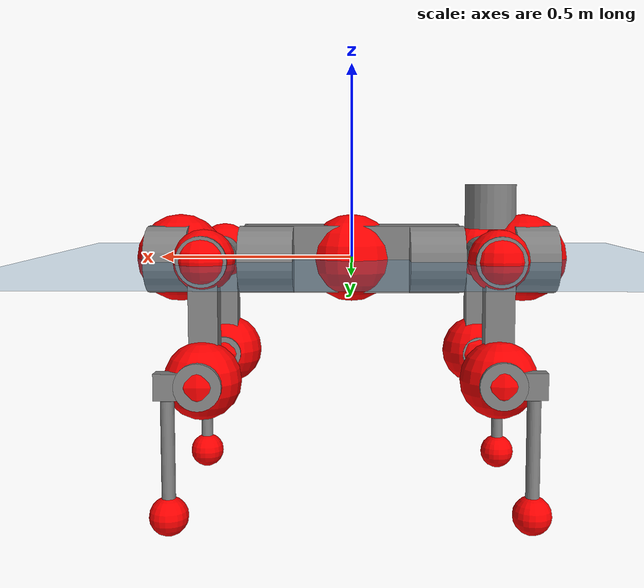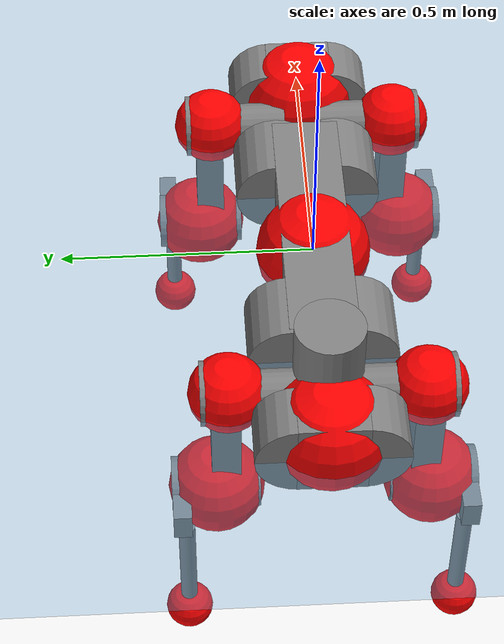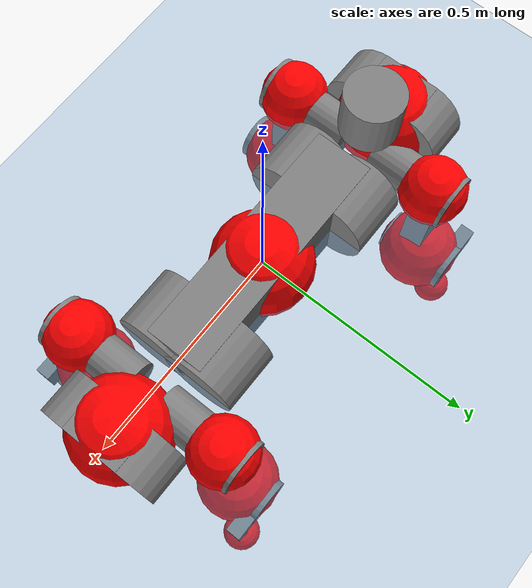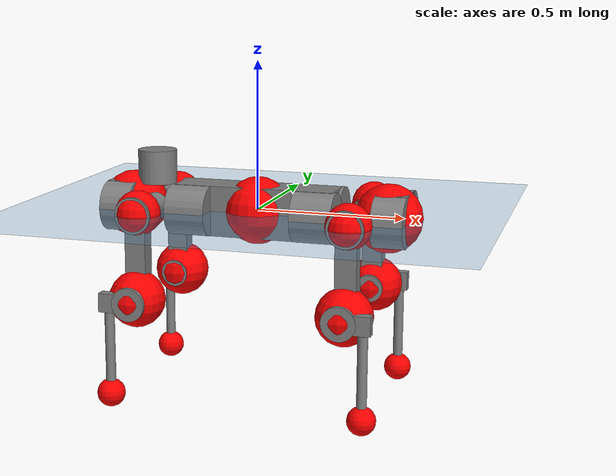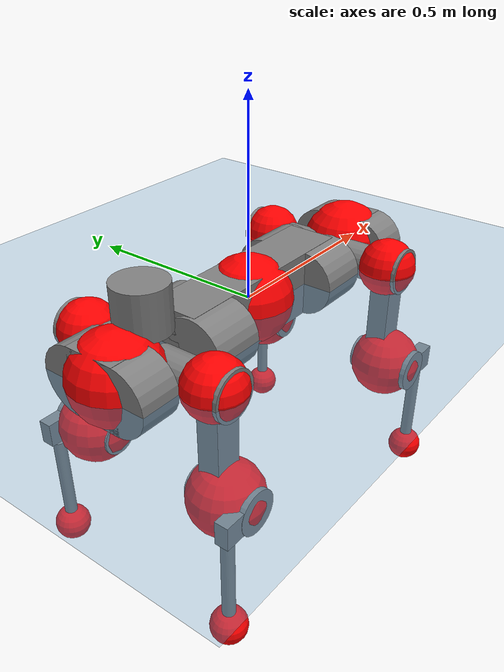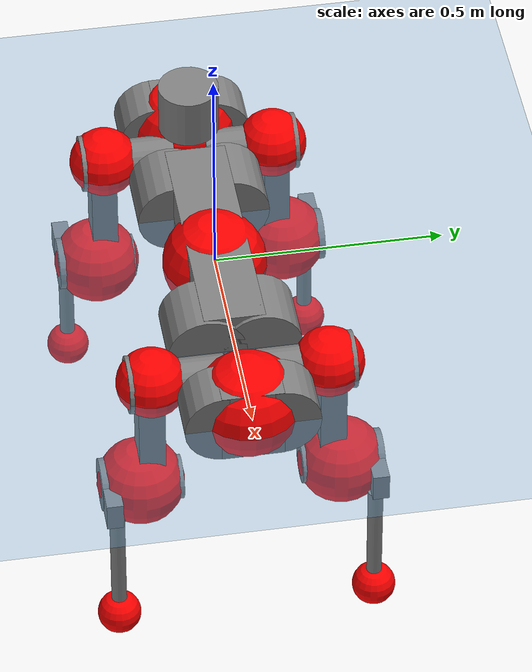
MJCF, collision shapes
<mujoco model="anymal_c">
  <compiler angle="radian" assetdir="assets" balanceinertia="true" inertiafromgeom="false"/>

  <option timestep="0.005" density="1.2" viscosity="2e-05"/>

  <size nkey="1"/>

  <visual>
    <quality shadowsize="8192"/>
    <map shadowclip="0.5"/>
  </visual>

  <default>
    <default class="/">
      <material specular="0" shininess="0.25"/>
      <geom contype="0" conaffinity="0" group="1" solref="-1000 -80"/>
      <site size="0.01 0.005 0.005" group="5"/>
      <general forcelimited="true" forcerange="-80 80" biastype="affine" gainprm="80" biasprm="0 -80 -2"/>
      <default class="anymal_c">
        <joint armature="0.01" damping="0.01" frictionloss="0.1"/>
        <default class="visual">
          <geom type="mesh" group="2"/>
          <default class="visual_zflip"/>
        </default>
        <default class="collision">
          <geom type="cylinder" group="3"/>
          <default class="foot">
            <geom size="0.03 0 0" type="sphere" condim="6" priority="1" friction="0.8 0.02 0.01" solimp="0.015 1 0.03"/>
          </default>
        </default>
      </default>
      <default class="reward_collision_sphere">
        <geom group="5" rgba="1 0 0 1"/>
      </default>
    </default>
  </default>

  <asset>
    <texture type="skybox" colorspace="auto" name="//unnamed_texture_0" builtin="gradient" rgb1="0.95 0.95 0.95" rgb2="0.95 0.95 0.95" width="100" height="600"/>
    <texture type="2d" colorspace="auto" name="texplane" builtin="checker" rgb1="0.345 0.575 0.748" rgb2="0.345 0.575 0.748" markrgb="1 1 1" width="512" height="512"/>
    <texture type="2d" colorspace="linear" name="base" file="base.png"/>
    <texture type="2d" colorspace="linear" name="top_shell" file="top_shell.png"/>
    <texture type="2d" colorspace="linear" name="bottom_shell" file="bottom_shell.png"/>
    <texture type="2d" colorspace="linear" name="remote" file="remote.png"/>
    <texture type="2d" colorspace="linear" name="hatch" file="hatch.png"/>
    <texture type="2d" colorspace="linear" name="handle" file="handle.png"/>
    <texture type="2d" colorspace="linear" name="face" file="face.png"/>
    <texture type="2d" colorspace="linear" name="battery" file="battery.png"/>
    <texture type="2d" colorspace="linear" name="lidar_cage" file="lidar_cage.png"/>
    <texture type="2d" colorspace="linear" name="depth_camera" file="depth_camera.png"/>
    <texture type="2d" colorspace="linear" name="wide_angle_camera" file="wide_angle_camera.png"/>
    <texture type="2d" colorspace="linear" name="lidar" file="lidar.png"/>
    <texture type="2d" colorspace="linear" name="drive" file="drive.png"/>
    <texture type="2d" colorspace="linear" name="hip_l" file="hip_l.png"/>
    <texture type="2d" colorspace="linear" name="shank_l" file="shank_l.png"/>
    <texture type="2d" colorspace="linear" name="foot" file="foot.png"/>
    <texture type="2d" colorspace="linear" name="thigh" file="thigh.png"/>
    <texture type="2d" colorspace="linear" name="shank_r" file="shank_r.png"/>
    <texture type="2d" colorspace="linear" name="hip_r" file="hip_r.png"/>
    <material name="MatPlane" class="/" texture="texplane" texuniform="true" texrepeat="2 2" specular="0.9" shininess="0.5"/>
    <material name="black_plastic" class="/" rgba="0.007 0.007 0.007 1"/>
    <material name="green" class="/" rgba="0.052 0.178 0.033 1"/>
    <material name="red" class="/" rgba="0.178 0.006 0.005 1"/>
    <material name="yellow" class="/" rgba="0.178 0.119 0.006 1"/>
    <material name="lwl" class="/" rgba="0.8 0.8 0.8 1"/>
    <material name="base" class="/" texture="base"/>
    <material name="top_shell" class="/" texture="top_shell"/>
    <material name="bottom_shell" class="/" texture="bottom_shell"/>
    <material name="hip_l" class="/" texture="hip_l"/>
    <material name="thigh" class="/" texture="thigh"/>
    <material name="shank_l" class="/" texture="shank_l"/>
    <material name="foot" class="/" texture="foot"/>
    <material name="hip_r" class="/" texture="hip_r"/>
    <material name="shank" class="/" texture="shank_r"/>
    <material name="hatch" class="/" texture="hatch"/>
    <material name="remote" class="/" texture="remote"/>
    <material name="handle" class="/" texture="handle"/>
    <material name="face" class="/" texture="face"/>
    <material name="depth_camera" class="/" texture="depth_camera"/>
    <material name="wide_angle_camera" class="/" texture="wide_angle_camera"/>
    <material name="battery" class="/" texture="battery"/>
    <material name="lidar_cage" class="/" texture="lidar_cage"/>
    <material name="lidar" class="/" texture="lidar"/>
    <material name="drive" class="/" texture="drive"/>
    <mesh name="base_0" class="/" file="base_0.obj"/>
    <mesh name="base_1" class="/" file="base_1.obj"/>
    <mesh name="base_2" class="/" file="base_2.obj"/>
    <mesh name="base_3" class="/" file="base_3.obj"/>
    <mesh name="base_4" class="/" file="base_4.obj"/>
    <mesh name="base_5" class="/" file="base_5.obj"/>
    <mesh name="top_shell" class="/" file="top_shell.obj"/>
    <mesh name="bottom_shell" class="/" file="bottom_shell.obj"/>
    <mesh name="remote" class="/" file="remote.obj"/>
    <mesh name="handle" class="/" file="handle.obj"/>
    <mesh name="face" class="/" file="face.obj"/>
    <mesh name="wide_angle_camera" class="/" file="wide_angle_camera.obj"/>
    <mesh name="depth_camera" class="/" file="depth_camera.obj"/>
    <mesh name="battery" class="/" file="battery.obj"/>
    <mesh name="lidar_cage" class="/" file="lidar_cage.obj"/>
    <mesh name="lidar" class="/" file="lidar.obj"/>
    <mesh name="drive" class="/" file="drive.obj"/>
    <mesh name="hip_l" class="/" file="hip_l.obj"/>
    <mesh name="thigh" class="/" file="thigh.obj"/>
    <mesh name="shank_l" class="/" file="shank_l.obj"/>
    <mesh name="foot" class="/" file="foot.obj"/>
    <mesh name="hip_r" class="/" file="hip_r.obj"/>
    <mesh name="hatch" class="/" file="hatch.obj"/>
    <mesh name="shank_r" class="/" file="shank_r.obj"/>
  </asset>

  <worldbody>
    <geom name="floor" class="/" size="100 100 0.125" type="plane" group="0" material="MatPlane"/>
    <light name="toplight_shadow" class="/" pos="0 0 5" dir="0.0990148 0.0990148 -0.990148" type="directional" ambient="0.04 0.04 0.04" diffuse="0.55 0.55 0.55" specular="0.12 0.12 0.12"/>
    <light name="toplight_fill" class="/" pos="0 0 5" dir="0.0990148 0.0990148 -0.990148" type="directional" castshadow="false" ambient="0.04 0.04 0.04" diffuse="0.3 0.3 0.3" specular="0.08 0.08 0.08"/>
    <body name="trunk" childclass="anymal_c" pos="0.000182096 -0.0001216 -0.0015778" quat="1 3.34887e-05 2.2221e-05 -3.7017e-05">
      <inertial pos="0.000179943 -0.00269204 0.0487243" quat="0.50352 0.499385 0.500078 0.496995" mass="16.3284" diaginertia="0.630817 0.286969 0.232165"/>
      <joint name="//unnamed_joint_0" type="free" armature="0" damping="0" frictionloss="0"/>
      <geom name="//unnamed_geom_1" class="visual" material="green" mesh="base_0"/>
      <geom name="//unnamed_geom_2" class="visual" material="yellow" mesh="base_1"/>
      <geom name="//unnamed_geom_3" class="visual" material="red" mesh="base_2"/>
      <geom name="//unnamed_geom_4" class="visual" material="black_plastic" mesh="base_3"/>
      <geom name="//unnamed_geom_5" class="visual" material="lwl" mesh="base_4"/>
      <geom name="//unnamed_geom_6" class="visual" material="base" mesh="base_5"/>
      <geom name="trunk_1" class="collision" size="0.275864 0.0665878 0.0856129" type="box"/>
      <geom name="trunk_2" class="collision" size="0.0856129 0.0689659" pos="0.216415 0.0596505 0" quat="0.707107 0 0.707107 0"/>
      <geom name="trunk_3" class="collision" size="0.0856129 0.0689659" pos="-0.216415 0.0596505 0" quat="0.707107 0 0.707107 0"/>
      <geom name="trunk_4" class="collision" size="0.0856129 0.0689659" pos="0.216415 -0.0596505 0" quat="0.707107 0 0.707107 0"/>
      <geom name="trunk_5" class="collision" size="0.0856129 0.0689659" pos="-0.216415 -0.0596505 0" quat="0.707107 0 0.707107 0"/>
      <geom name="//unnamed_geom_12" class="visual" material="top_shell" mesh="top_shell"/>
      <geom name="//unnamed_geom_13" class="visual" material="bottom_shell" mesh="bottom_shell"/>
      <geom name="//unnamed_geom_14" class="visual" material="remote" mesh="remote"/>
      <geom name="//unnamed_geom_15" class="visual" material="handle" mesh="handle"/>
      <geom name="//unnamed_geom_16" class="visual" pos="0.412433 0 0" quat="1 0 0 0" material="face" mesh="face"/>
      <geom name="trunk_6" class="collision" size="0.052319 0.0665878 0.0856129" pos="0.467159 0 0" type="box"/>
      <geom name="//unnamed_geom_18" class="collision" size="0.0856129 0.052319" pos="0.467159 0.0596505 0" quat="0.707107 0 0.707107 0"/>
      <geom name="//unnamed_geom_19" class="collision" size="0.0856129 0.052319" pos="0.467159 -0.0596505 0" quat="0.707107 0 0.707107 0"/>
      <geom name="//unnamed_geom_20" class="visual" pos="0.459349 0 -0.0294807" quat="0.965926 0 0.258819 0" material="depth_camera" mesh="depth_camera"/>
      <geom name="//unnamed_geom_21" class="visual" pos="0.510442 0 0.0150688" material="wide_angle_camera" mesh="wide_angle_camera"/>
      <geom name="//unnamed_geom_22" class="visual_zflip" pos="-0.412433 0 0" quat="0 0 0 1" material="face" mesh="face"/>
      <geom name="trunk_7" class="collision" size="0.052319 0.0665878 0.0856129" pos="-0.467159 0 0" quat="0 0 0 1" type="box"/>
      <geom name="//unnamed_geom_24" class="collision" size="0.0856129 0.052319" pos="-0.467159 -0.0596505 0" quat="0 -0.707107 0 0.707107"/>
      <geom name="//unnamed_geom_25" class="collision" size="0.0856129 0.052319" pos="-0.467159 0.0596505 0" quat="0 -0.707107 0 0.707107"/>
      <geom name="//unnamed_geom_26" class="visual" pos="-0.459349 0 -0.0294807" quat="0 -0.258819 0 0.965926" material="depth_camera" mesh="depth_camera"/>
      <geom name="//unnamed_geom_27" class="visual_zflip" pos="-0.510442 0 0.0150688" quat="0 0 0 1" material="wide_angle_camera" mesh="wide_angle_camera"/>
      <geom name="//unnamed_geom_28" class="visual" material="battery" mesh="battery"/>
      <geom name="//unnamed_geom_29" class="visual" pos="0 0.0632812 0.0291537" quat="0.683013 -0.183013 0.183013 0.683013" material="depth_camera" mesh="depth_camera"/>
      <geom name="//unnamed_geom_30" class="visual" pos="0 -0.0632812 0.0291537" quat="0.683013 0.183013 0.183013 -0.683013" material="depth_camera" mesh="depth_camera"/>
      <geom name="//unnamed_geom_31" class="visual" pos="-0.362185 0 0.073985" quat="1 0 0 0" material="lidar_cage" mesh="lidar_cage"/>
      <geom name="trunk_8" class="collision" size="0.0665878 0.0570753" pos="-0.362185 0 0.134381"/>
      <geom name="//unnamed_geom_33" class="visual" pos="-0.362185 -5.61273e-05 0.143138" quat="0.707107 0 0 -0.707107" material="lidar" mesh="lidar"/>
      <geom name="//unnamed_geom_34" class="visual" pos="0.298405 0.0886785 -2.66427e-09" quat="0.258819 0.965926 0 0" material="drive" mesh="drive"/>
      <geom name="//unnamed_geom_35" class="visual" pos="0.298405 -0.0886785 2.66427e-09" quat="0.258819 -0.965926 0 0" material="drive" mesh="drive"/>
      <geom name="//unnamed_geom_36" class="visual" pos="-0.298405 0.0886785 2.66427e-09" quat="0 0 0.965926 -0.258819" material="drive" mesh="drive"/>
      <geom name="//unnamed_geom_37" class="visual" pos="-0.298405 -0.0886785 -2.66427e-09" quat="0 0 -0.965926 -0.258819" material="drive" mesh="drive"/>
      <geom name="//unnamed_geom_38" class="visual" pos="0.115422 0 0.0734817" quat="1 0 0 0" material="hatch" mesh="hatch"/>
      <geom name="//unnamed_geom_39" class="reward_collision_sphere" size="0.114151"/>
      <geom name="//unnamed_geom_40" class="reward_collision_sphere" size="0.114151" pos="0.447756 0 0"/>
      <geom name="//unnamed_geom_41" class="reward_collision_sphere" size="0.114151" pos="-0.447756 0 0"/>
      <site name="imu" pos="0.234202 0.00938708 0.0590622" size="0.00951254"/>
      <camera name="track" pos="0 -1.7043 0" quat="0.707107 0.707107 0 0" mode="trackcom"/>
      <camera name="ego_camera" pos="0.447756 0 -0.040264" quat="-0.5 -0.5 0.5 0.5"/>
      <body name="LF_HIP" pos="0.298248 0.0898275 0.00124914" quat="0.258719 0.965953 3.86521e-05 -4.31195e-05">
        <inertial pos="0.0589619 -0.0129569 -0.00861611" quat="-0.127931 0.70882 -0.139744 0.67947" mass="2.29944" diaginertia="0.00548467 0.00219616 0.00333917"/>
        <joint name="LF_HAA" pos="0 0 0" axis="0.999919 0.00999588 -0.00788814" range="-0.727546 0.498593" armature="0.0107808" damping="0" frictionloss="0.0992352"/>
        <geom name="//unnamed_geom_42" class="visual" pos="0 -0.000156727 2.57422e-05" quat="0.258819 -0.965926 0 0" material="hip_l" mesh="hip_l"/>
        <geom name="//unnamed_geom_43" class="visual" pos="0.0596013 -0.0703935 -0.0417841" quat="0.183013 -0.683013 0.683013 0.183013" material="drive" mesh="drive"/>
        <geom name="//unnamed_geom_44" class="collision" size="0.0475627 0.0665878" pos="0.0596013 -0.0101915 -0.00695057" quat="-0.353553 -0.612372 0.612372 -0.353553"/>
        <body name="LF_THIGH" pos="0.0599825 -0.0606929 -0.0427788" quat="0.182984 -0.683173 0.682874 0.18296">
          <inertial pos="0.030815 -0.000202194 -0.244704" quat="0.993655 -0.0047744 -0.0756103 0.0831279" mass="2.69246" diaginertia="0.0287179 0.0135109 0.00439434"/>
          <joint name="LF_HFE" pos="0 0 0" axis="0.999885 0.0151654 0.000598881" range="-3.12265 3.11967" armature="0.00920028" damping="0.0142974" frictionloss="0.0833205"/>
          <geom name="//unnamed_geom_45" class="visual" pos="0.00284243 4.479e-06 0" quat="0.707107 0 0 -0.707107" material="thigh" mesh="thigh"/>
          <geom name="//unnamed_geom_46" class="collision" size="0.0618315 0.0380502" pos="0.0398005 0 0" quat="0.5 0.5 -0.5 -0.5"/>
          <geom name="//unnamed_geom_47" class="collision" size="0.035672 0.0285376 0.134426" pos="0.0298504 0 -0.142247" quat="0.707107 0 0 -0.707107" type="box"/>
          <geom name="//unnamed_geom_48" class="visual" pos="0.0997999 0 -0.286881" quat="1 0 0 0" material="drive" mesh="drive"/>
          <geom name="//unnamed_geom_49" class="collision" size="0.0475627 0.0665878" pos="0.0301489 0 -0.286881" quat="0.707107 0 0.707107 0"/>
          <geom name="//unnamed_geom_50" class="reward_collision_sphere" size="0.0761003" pos="0.0248753 0 0"/>
          <body name="LF_SHANK" pos="0.102366 -0.00280685 -0.289742" quat="0.999999 -0.000560073 -5.15113e-06 -0.00101576">
            <inertial pos="0.00641108 -0.0522413 -0.0802257" quat="0.993363 -0.112206 0.00273861 -0.0251598" mass="0.499405" diaginertia="0.00985124 0.00412766 0.00116307"/>
            <joint name="LF_KFE" pos="0 0 0" axis="0.999999 0.00143534 -0.000701088" range="-3.16918 3.12737" armature="0.00969044" damping="0" frictionloss="0.100666"/>
            <geom name="//unnamed_geom_51" class="visual" pos="0.000926853 0.00494203 0" quat="0.707107 0 0 -0.707107" material="shank_l" mesh="shank_l"/>
            <geom name="LF_kfe_act" class="collision" size="0.0570753 0.0190251" pos="0.0199003 0 0" quat="0.5 0.5 -0.5 -0.5"/>
            <geom name="//unnamed_geom_53" class="collision" size="0.0546962 0.0321048 0.0180738" pos="0.0199003 -0.0489978 0" quat="0.5 0.5 -0.5 -0.5" type="box"/>
            <geom name="//unnamed_geom_54" class="visual" pos="0.0129847 -0.073354 -0.3402" quat="0.382683 0 0 -0.92388" material="foot" mesh="foot"/>
            <geom name="LF_calf" class="collision" size="0.0166469 0.134367" pos="0.0129849 -0.0749466 -0.1701" quat="0.707107 0 0 -0.707107"/>
            <geom name="LF_foot" class="foot" size="0.0311163" pos="0.0129849 -0.0749466 -0.317552" quat="0.707107 0 0 -0.707107"/>
            <geom name="//unnamed_geom_57" class="reward_collision_sphere" size="0.0951254" pos="-0.0497507 0 0"/>
            <geom name="//unnamed_geom_58" class="reward_collision_sphere" size="0.0475627" pos="0.0129849 -0.0749466 -0.317552"/>
            <site name="LF_foot" class="foot" pos="0.0129849 -0.0749466 -0.317552" quat="0.707107 0 0 -0.707107" size="0.00951254"/>
          </body>
        </body>
      </body>
      <body name="RF_HIP" pos="0.29798 -0.0892929 0.000404452" quat="0.258809 -0.965929 -9.89214e-05 -9.12642e-05">
        <inertial pos="0.0589611 0.0134015 -0.00818028" quat="0.135203 0.679065 0.12801 0.710074" mass="2.45836" diaginertia="0.00580392 0.00226134 0.00345311"/>
        <joint name="RF_HAA" pos="0 0 0" axis="0.999999 0.00123763 0.000635305" range="-0.544378 0.709843" armature="0.00836129" damping="0.00997" frictionloss="0.083121"/>
        <geom name="//unnamed_geom_59" class="visual" pos="0 0.000156725 2.57422e-05" quat="0.258819 0.965926 0 0" material="hip_r" mesh="hip_r"/>
        <geom name="//unnamed_geom_60" class="visual" pos="0.0596013 0.0703935 -0.0417841" quat="0.183013 0.683013 0.683013 -0.183013" material="drive" mesh="drive"/>
        <geom name="//unnamed_geom_61" class="collision" size="0.0475627 0.0665878" pos="0.0596013 0.0101915 -0.00695057" quat="-0.353553 0.612372 0.612372 0.353553"/>
        <body name="RF_THIGH" pos="0.0602587 0.0646071 -0.0428899" quat="0.183018 0.683182 0.682848 -0.182989">
          <inertial pos="0.0304938 -0.000731036 -0.247072" quat="0.993038 -0.0165176 -0.080307 0.084582" mass="2.49199" diaginertia="0.0288105 0.0132906 0.00421703"/>
          <joint name="RF_HFE" pos="0 0 0" axis="0.999974 -0.00587185 0.00411723" stiffness="0.00641051" range="-3.08917 3.16852" armature="0.00969017" damping="0" frictionloss="0.107444"/>
          <geom name="//unnamed_geom_62" class="visual" pos="0.00284243 4.479e-06 0" quat="0.707107 0 0 -0.707107" material="thigh" mesh="thigh"/>
          <geom name="//unnamed_geom_63" class="collision" size="0.0618315 0.0380502" pos="0.0398005 0 0" quat="0.5 0.5 0.5 0.5"/>
          <geom name="//unnamed_geom_64" class="collision" size="0.035672 0.0285376 0.134426" pos="0.0298504 0 -0.142247" quat="0.707107 0 0 0.707107" type="box"/>
          <geom name="//unnamed_geom_65" class="visual" pos="0.0997999 0 -0.286881" quat="1 0 0 0" material="drive" mesh="drive"/>
          <geom name="//unnamed_geom_66" class="collision" size="0.0475627 0.0665878" pos="0.0301489 0 -0.286881" quat="0.707107 0 0.707107 0"/>
          <geom name="//unnamed_geom_67" class="reward_collision_sphere" size="0.0761003" pos="0.0248753 0 0"/>
          <body name="RF_SHANK" pos="0.101664 -0.00218918 -0.287313" quat="1 6.40285e-06 0.000105785 0.000141103">
            <inertial pos="0.0059342 0.0517097 -0.0783122" quat="0.992732 0.11827 -0.00147432 0.0221921" mass="0.508906" diaginertia="0.00955417 0.00402768 0.00116107"/>
            <joint name="RF_KFE" pos="0 0 0" axis="1 -0.000298708 -0.000869255" stiffness="0.000219365" range="-3.1462 3.15814" armature="0.00995835" damping="0.00688828" frictionloss="0.0824233"/>
            <geom name="//unnamed_geom_68" class="visual" pos="0.000926848 -0.00494202 0" quat="0.707107 0 0 0.707107" material="shank" mesh="shank_r"/>
            <geom name="RF_kfe_act" class="collision" size="0.0570753 0.0190251" pos="0.0199003 0 0" quat="0.5 0.5 0.5 0.5"/>
            <geom name="//unnamed_geom_70" class="collision" size="0.0546962 0.0321048 0.0180738" pos="0.0199003 0.0489978 0" quat="0.5 0.5 0.5 0.5" type="box"/>
            <geom name="//unnamed_geom_71" class="visual" pos="0.0129852 0.073354 -0.3402" quat="0.382683 0 0 0.92388" material="foot" mesh="foot"/>
            <geom name="RF_calf" class="collision" size="0.0166469 0.134367" pos="0.0129849 0.0749466 -0.1701" quat="0.707107 0 0 0.707107"/>
            <geom name="RF_foot" class="foot" size="0.0266997" pos="0.0129849 0.0749466 -0.317552" quat="0.707107 0 0 0.707107"/>
            <geom name="//unnamed_geom_74" class="reward_collision_sphere" size="0.0951254" pos="-0.0497507 0 0"/>
            <geom name="//unnamed_geom_75" class="reward_collision_sphere" size="0.0475627" pos="0.0129849 0.0749466 -0.317552"/>
            <site name="RF_foot" class="foot" pos="0.0129849 0.0749466 -0.317552" quat="0.707107 0 0 0.707107" size="0.00951254"/>
          </body>
        </body>
      </body>
      <body name="LH_HIP" pos="-0.300547 0.0890348 0.000710809" quat="7.8389e-05 -0.000322841 0.965985 -0.258598">
        <inertial pos="0.0564413 0.0153412 -0.00785015" quat="0.133202 0.682488 0.128849 0.707012" mass="2.37694" diaginertia="0.00559786 0.00221675 0.00319632"/>
        <joint name="LH_HAA" pos="0 0 0" axis="0.999998 0.000314899 -0.00219142" range="-0.507446 0.671512" armature="0.00816864" damping="0.00865154" frictionloss="0.0925403"/>
        <geom name="//unnamed_geom_76" class="visual" pos="0 0.000156725 2.57422e-05" quat="-0.258819 -0.965926 0 0" material="hip_r" mesh="hip_r"/>
        <geom name="//unnamed_geom_77" class="visual" pos="0.0596013 0.0703935 -0.0417841" quat="0.183013 0.683013 0.683013 -0.183013" material="drive" mesh="drive"/>
        <geom name="//unnamed_geom_78" class="collision" size="0.0475627 0.0665878" pos="0.0596013 0.0101915 -0.00695057" quat="-0.353553 0.612372 0.612372 0.353553"/>
        <body name="LH_THIGH" pos="0.0573946 0.0592534 -0.0416171" quat="0.183049 0.682917 0.683059 -0.183159">
          <inertial pos="0.0307729 0.00205513 -0.246461" quat="0.992622 -0.00467441 -0.0811409 0.0899795" mass="2.6518" diaginertia="0.0295145 0.0132864 0.004278"/>
          <joint name="LH_HFE" pos="0 0 0" axis="0.999938 -0.00908392 -0.00645322" range="-3.14658 3.14093" armature="0.00935684" damping="0.00892535" frictionloss="0.09164"/>
          <geom name="//unnamed_geom_79" class="visual" pos="0.00284243 4.479e-06 0" quat="0.707107 0 0 -0.707107" material="thigh" mesh="thigh"/>
          <geom name="//unnamed_geom_80" class="collision" size="0.0618315 0.0380502" pos="0.0398005 0 0" quat="0.5 0.5 -0.5 -0.5"/>
          <geom name="//unnamed_geom_81" class="collision" size="0.035672 0.0285376 0.134426" pos="0.0298504 0 -0.142247" quat="0.707107 0 0 -0.707107" type="box"/>
          <geom name="//unnamed_geom_82" class="visual" pos="0.0997999 0 -0.286881" quat="1 0 0 0" material="drive" mesh="drive"/>
          <geom name="//unnamed_geom_83" class="collision" size="0.0475627 0.0665878" pos="0.0301489 0 -0.286881" quat="0.707107 0 0.707107 0"/>
          <geom name="//unnamed_geom_84" class="reward_collision_sphere" size="0.0761003" pos="0.0248753 0 0"/>
          <body name="LH_SHANK" pos="0.0985122 -0.000144996 -0.286932" quat="1 1.53073e-05 -1.35229e-05 -1.10308e-05">
            <inertial pos="0.0054012 0.0523118 -0.0811621" quat="0.993963 0.108244 0.0053155 0.0171126" mass="0.503729" diaginertia="0.00992692 0.00412087 0.00111339"/>
            <joint name="LH_KFE" pos="0 0 0" axis="0.999866 0.0017284 0.0162722" stiffness="0.00099904" range="-3.13646 3.14092" armature="0.00863374" damping="0.00705197" frictionloss="0.101383"/>
            <geom name="//unnamed_geom_85" class="visual" pos="0.000926848 -0.00494202 0" quat="-0.707107 0 0 -0.707107" material="shank" mesh="shank_r"/>
            <geom name="LH_kfe_act" class="collision" size="0.0570753 0.0190251" pos="0.0199003 0 0" quat="0.5 0.5 -0.5 -0.5"/>
            <geom name="//unnamed_geom_87" class="collision" size="0.0546962 0.0321048 0.0180738" pos="0.0199003 0.0489978 0" quat="0.5 0.5 -0.5 -0.5" type="box"/>
            <geom name="//unnamed_geom_88" class="visual" pos="0.0129852 0.073354 -0.3402" quat="-0.382683 0 0 -0.92388" material="foot" mesh="foot"/>
            <geom name="LH_calf" class="collision" size="0.0166469 0.134367" pos="0.0129849 0.0749466 -0.1701" quat="0.707107 0 0 -0.707107"/>
            <geom name="LH_foot" class="foot" size="0.0343012" pos="0.0129849 0.0749466 -0.317552" quat="0.707107 0 0 -0.707107"/>
            <geom name="//unnamed_geom_91" class="reward_collision_sphere" size="0.0951254" pos="-0.0497507 0 0"/>
            <geom name="//unnamed_geom_92" class="reward_collision_sphere" size="0.0475627" pos="0.0129849 0.0749466 -0.317552"/>
            <site name="LH_foot" class="foot" pos="0.0129849 0.0749466 -0.317552" quat="0.707107 0 0 -0.707107" size="0.00951254"/>
          </body>
        </body>
      </body>
      <body name="RH_HIP" pos="-0.298009 -0.0918313 0.000598364" quat="0.000677053 0.000784445 -0.965947 -0.258736">
        <inertial pos="0.0537592 -0.0131544 -0.0061955" quat="-0.131152 0.710552 -0.138772 0.677242" mass="2.38435" diaginertia="0.00566954 0.00220567 0.00327578"/>
        <joint name="RH_HAA" pos="0 0 0" axis="1 0.000569032 -0.00036623" range="-0.77089 0.546812" armature="0.00949616" damping="0.00319174" frictionloss="0.0938738"/>
        <geom name="//unnamed_geom_93" class="visual" pos="0 -0.000156727 2.57422e-05" quat="-0.258819 0.965926 0 0" material="hip_l" mesh="hip_l"/>
        <geom name="//unnamed_geom_94" class="visual" pos="0.0596013 -0.0703935 -0.0417841" quat="-0.183013 0.683013 -0.683013 -0.183013" material="drive" mesh="drive"/>
        <geom name="//unnamed_geom_95" class="collision" size="0.0475627 0.0665878" pos="0.0596013 -0.0101915 -0.00695057" quat="0.353553 0.612372 -0.612372 0.353553"/>
        <body name="RH_THIGH" pos="0.059814 -0.0621641 -0.0406293" quat="-0.183002 0.682908 -0.683087 -0.183137">
          <inertial pos="0.0327161 0.00104392 -0.24786" quat="0.993189 -0.00518914 -0.0804093 0.0841652" mass="2.4706" diaginertia="0.0276821 0.013075 0.00412878"/>
          <joint name="RH_HFE" pos="0 0 0" axis="0.999964 -0.00792196 0.00318394" range="-3.13159 3.13489" armature="0.00969751" damping="0.0112344" frictionloss="0.0936267"/>
          <geom name="//unnamed_geom_96" class="visual" pos="0.00284243 4.479e-06 0" quat="0.707107 0 0 -0.707107" material="thigh" mesh="thigh"/>
          <geom name="//unnamed_geom_97" class="collision" size="0.0618315 0.0380502" pos="0.0398005 0 0" quat="0.5 0.5 0.5 0.5"/>
          <geom name="//unnamed_geom_98" class="collision" size="0.035672 0.0285376 0.134426" pos="0.0298504 0 -0.142247" quat="0.707107 0 0 0.707107" type="box"/>
          <geom name="//unnamed_geom_99" class="visual" pos="0.0997999 0 -0.286881" quat="1 0 0 0" material="drive" mesh="drive"/>
          <geom name="//unnamed_geom_100" class="collision" size="0.0475627 0.0665878" pos="0.0301489 0 -0.286881" quat="0.707107 0 0.707107 0"/>
          <geom name="//unnamed_geom_101" class="reward_collision_sphere" size="0.0761003" pos="0.0248753 0 0"/>
          <body name="RH_SHANK" pos="0.0972934 0.00156583 -0.287525" quat="1 -1.10721e-05 2.91767e-07 7.74699e-06">
            <inertial pos="0.00610056 -0.0519378 -0.0807252" quat="0.994181 -0.105401 0.00260937 -0.02211" mass="0.507329" diaginertia="0.00986822 0.00428615 0.00116929"/>
            <joint name="RH_KFE" pos="0 0 0" axis="0.999992 -0.00235684 0.00322854" stiffness="0.00358121" range="-3.12087 3.15388" armature="0.0082253" damping="0.00270086" frictionloss="0.0955626"/>
            <geom name="//unnamed_geom_102" class="visual" pos="0.000926853 0.00494203 0" quat="0.707107 0 0 -0.707107" material="shank_l" mesh="shank_l"/>
            <geom name="RH_kfe_act" class="collision" size="0.0570753 0.0190251" pos="0.0199003 0 0" quat="0.5 0.5 0.5 0.5"/>
            <geom name="//unnamed_geom_104" class="collision" size="0.0546962 0.0321048 0.0180738" pos="0.0199003 -0.0489978 0" quat="0.5 0.5 0.5 0.5" type="box"/>
            <geom name="//unnamed_geom_105" class="visual" pos="0.0129847 -0.073354 -0.3402" quat="0.382683 0 0 -0.92388" material="foot" mesh="foot"/>
            <geom name="RH_calf" class="collision" size="0.0166469 0.134367" pos="0.0129849 -0.0749466 -0.1701" quat="0.707107 0 0 0.707107"/>
            <geom name="RH_foot" class="foot" size="0.0240247" pos="0.0129849 -0.0749466 -0.317552" quat="0.707107 0 0 0.707107"/>
            <geom name="//unnamed_geom_108" class="reward_collision_sphere" size="0.0951254" pos="-0.0497507 0 0"/>
            <geom name="//unnamed_geom_109" class="reward_collision_sphere" size="0.0475627" pos="0.0129849 -0.0749466 -0.317552"/>
            <site name="RH_foot" class="foot" pos="0.0129849 -0.0749466 -0.317552" quat="0.707107 0 0 0.707107" size="0.00951254"/>
          </body>
        </body>
      </body>
    </body>
  </worldbody>

  <contact>
    <pair class="/" geom1="floor" geom2="LF_foot" name="//unnamed_contact_0"/>
    <pair class="/" geom1="floor" geom2="RF_foot" name="//unnamed_contact_1"/>
    <pair class="/" geom1="floor" geom2="LH_foot" name="//unnamed_contact_2"/>
    <pair class="/" geom1="floor" geom2="RH_foot" name="//unnamed_contact_3"/>
  </contact>

  <actuator>
    <general name="LF_HAA" class="/" joint="LF_HAA" forcerange="-78.416 78.416" gainprm="81.4641" biasprm="0 -81.4641 -1.8472"/>
    <general name="LF_HFE" class="/" joint="LF_HFE" forcerange="-74.6585 74.6585" gainprm="81.4641" biasprm="0 -81.4641 -1.8472"/>
    <general name="LF_KFE" class="/" joint="LF_KFE" forcerange="-78.2446 78.2446" gainprm="81.4641" biasprm="0 -81.4641 -1.8472"/>
    <general name="RF_HAA" class="/" joint="RF_HAA" forcerange="-73.9406 73.9406" gainprm="81.4641" biasprm="0 -81.4641 -1.8472"/>
    <general name="RF_HFE" class="/" joint="RF_HFE" forcerange="-78.5189 78.5189" gainprm="81.4641" biasprm="0 -81.4641 -1.8472"/>
    <general name="RF_KFE" class="/" joint="RF_KFE" forcerange="-69.6563 69.6563" gainprm="81.4641" biasprm="0 -81.4641 -1.8472"/>
    <general name="LH_HAA" class="/" joint="LH_HAA" forcerange="-76.6737 76.6737" gainprm="81.4641" biasprm="0 -81.4641 -1.8472"/>
    <general name="LH_HFE" class="/" joint="LH_HFE" forcerange="-69.7845 69.7845" gainprm="81.4641" biasprm="0 -81.4641 -1.8472"/>
    <general name="LH_KFE" class="/" joint="LH_KFE" forcerange="-78.0195 78.0195" gainprm="81.4641" biasprm="0 -81.4641 -1.8472"/>
    <general name="RH_HAA" class="/" joint="RH_HAA" forcerange="-79.2104 79.2104" gainprm="81.4641" biasprm="0 -81.4641 -1.8472"/>
    <general name="RH_HFE" class="/" joint="RH_HFE" forcerange="-69.1406 69.1406" gainprm="81.4641" biasprm="0 -81.4641 -1.8472"/>
    <general name="RH_KFE" class="/" joint="RH_KFE" forcerange="-82.9351 82.9351" gainprm="81.4641" biasprm="0 -81.4641 -1.8472"/>
  </actuator>

  <sensor>
    <gyro site="imu" name="imu_angular_velocity"/>
    <velocimeter site="imu" name="imu_linear_velocity"/>
    <framelinvel objtype="site" objname="LF_foot" name="LF_foot_global_linear_velocity"/>
    <framelinvel objtype="site" objname="RF_foot" name="RF_foot_global_linear_velocity"/>
    <framelinvel objtype="site" objname="LH_foot" name="LH_foot_global_linear_velocity"/>
    <framelinvel objtype="site" objname="RH_foot" name="RH_foot_global_linear_velocity"/>
  </sensor>

  <keyframe>
    <key name="home" qpos="0 0 0.55 1 0 0 0 0 0.4 -0.8 0 -0.4 0.8 0 -0.4 0.8 0 0.4 -0.8"/>
  </keyframe>
</mujoco>
